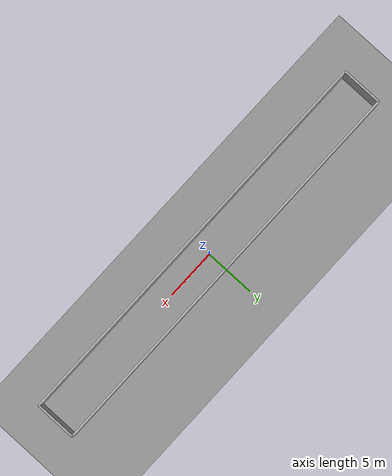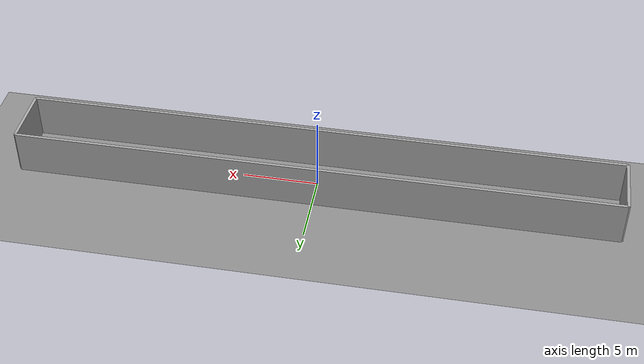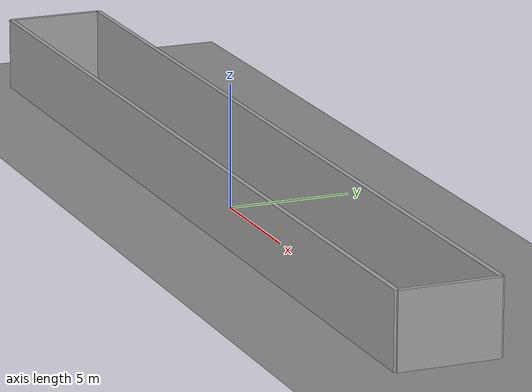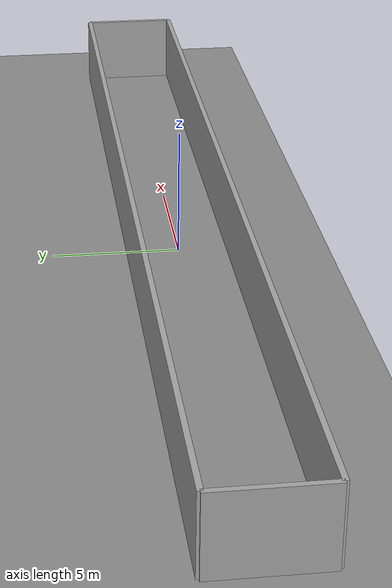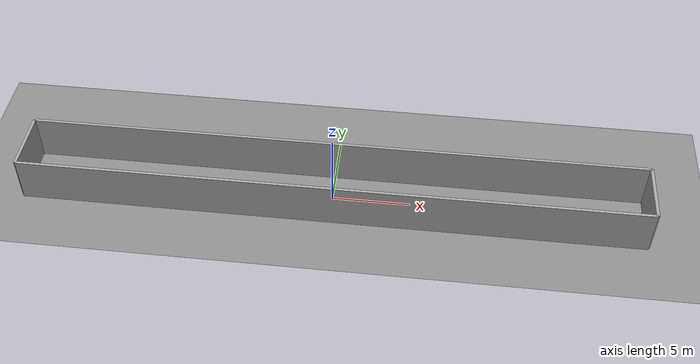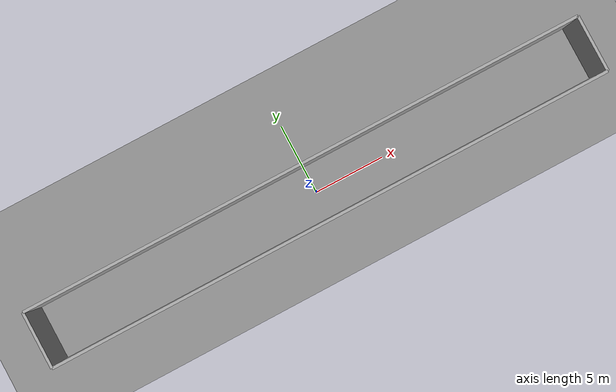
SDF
<?xml version="1.0"?>
<sdf version="1.6">
  <world name="corridor_normal_low_0">
    <physics name="default_physics" type="ode">
      <real_time_update_rate>1000</real_time_update_rate>
      <max_step_size>0.001</max_step_size>
    </physics>
    <scene>
      <ambient>0.35750000000000004 0.35750000000000004 0.35750000000000004 1</ambient>
      <background>0.08 0.09 0.12 1</background>
      <shadows>true</shadows>
    </scene>
    <light name="sun" type="directional">
      <cast_shadows>true</cast_shadows>
      <pose>0 0 20 0 0 0</pose>
      <diffuse>0.65 0.65 0.65 1.0</diffuse>
      <specular>0.65 0.65 0.65 1.0</specular>
      <direction>-0.5 0.2 -1</direction>
    </light>
    <model name="ground_plane">
      <static>true</static>
      <link name="link">
        <collision name="collision"><geometry><plane><normal>0 0 1</normal><size>100 100</size></plane></geometry></collision>
        <visual name="visual">
          <geometry><plane><normal>0 0 1</normal><size>100 100</size></plane></geometry>
          <material><ambient>0.35 0.35 0.35 1</ambient><diffuse>0.55 0.55 0.55 1</diffuse></material>
        </visual>
      </link>
    </model>

    <model name="wall_left">
      <static>true</static>
      <pose>0.0000 2.0000 1.5000 0 0 0</pose>
      <link name="link">
        <collision name="collision"><geometry><box><size>40 0.2 3</size></box></geometry></collision>
        <visual name="visual">
          <geometry><box><size>40 0.2 3</size></box></geometry>
          <material><ambient>0.65 0.65 0.65 1</ambient><diffuse>0.65 0.65 0.65 1</diffuse></material>
        </visual>
      </link>
    </model>

    <model name="wall_right">
      <static>true</static>
      <pose>0.0000 -2.0000 1.5000 0 0 0</pose>
      <link name="link">
        <collision name="collision"><geometry><box><size>40 0.2 3</size></box></geometry></collision>
        <visual name="visual">
          <geometry><box><size>40 0.2 3</size></box></geometry>
          <material><ambient>0.65 0.65 0.65 1</ambient><diffuse>0.65 0.65 0.65 1</diffuse></material>
        </visual>
      </link>
    </model>

    <model name="wall_end">
      <static>true</static>
      <pose>20.0000 0.0000 1.5000 0 0 0</pose>
      <link name="link">
        <collision name="collision"><geometry><box><size>0.2 4 3</size></box></geometry></collision>
        <visual name="visual">
          <geometry><box><size>0.2 4 3</size></box></geometry>
          <material><ambient>0.65 0.65 0.65 1</ambient><diffuse>0.65 0.65 0.65 1</diffuse></material>
        </visual>
      </link>
    </model>

    <model name="wall_start">
      <static>true</static>
      <pose>-20.0000 0.0000 1.5000 0 0 0</pose>
      <link name="link">
        <collision name="collision"><geometry><box><size>0.2 4 3</size></box></geometry></collision>
        <visual name="visual">
          <geometry><box><size>0.2 4 3</size></box></geometry>
          <material><ambient>0.65 0.65 0.65 1</ambient><diffuse>0.65 0.65 0.65 1</diffuse></material>
        </visual>
      </link>
    </model>
  </world>
</sdf>
